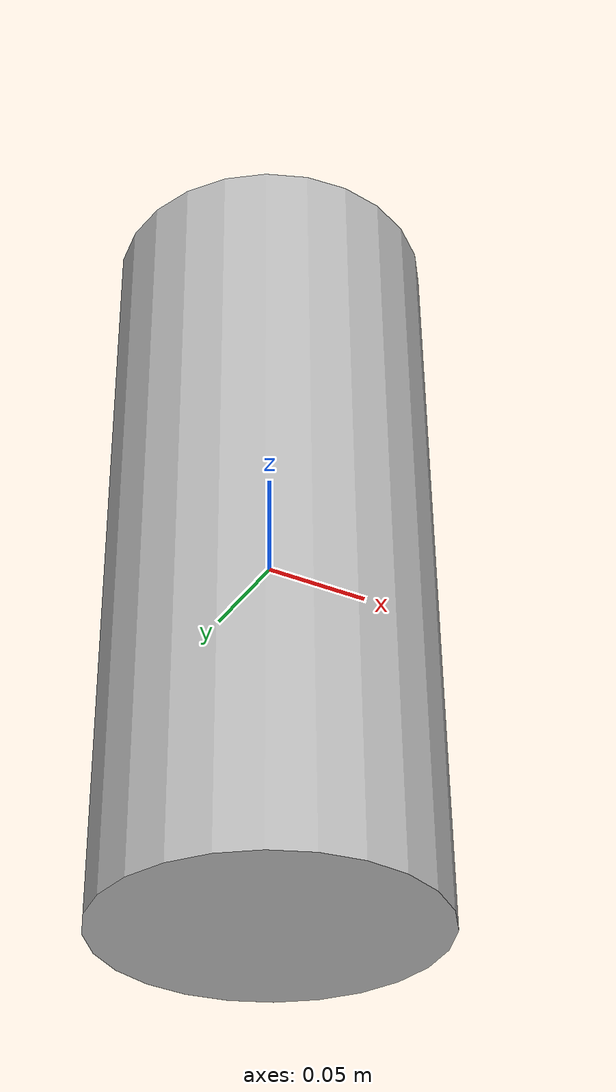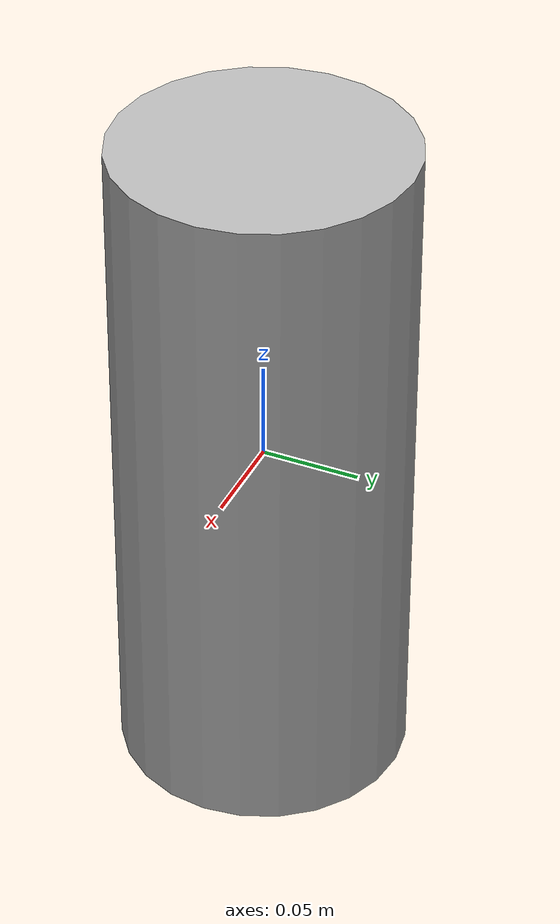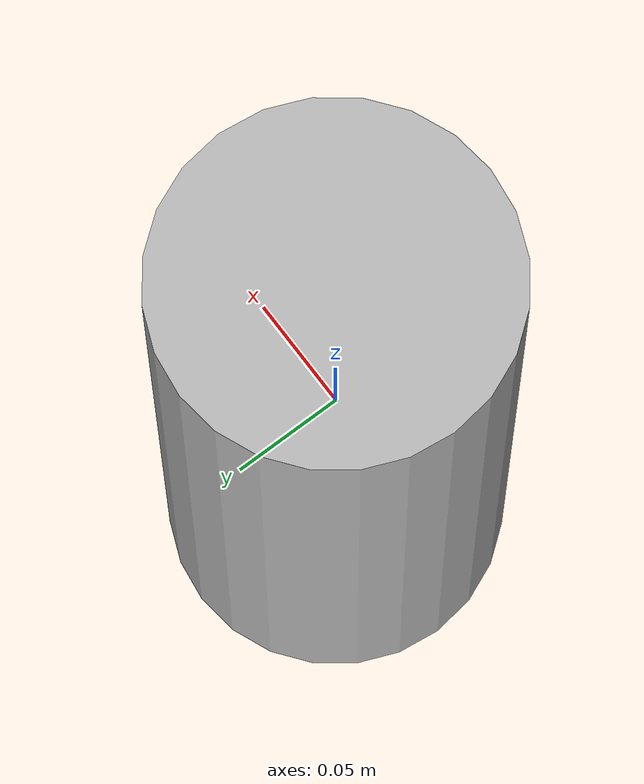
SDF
<?xml version='1.0'?>
<sdf version='1.6'>
  <model name='beer'>
    <link name='link'>
      <pose frame=''>0 0 0 0 -0 0</pose>
      <inertial>
        <mass>0.39</mass>
        <inertia>
          <ixx>0.00058</ixx>
          <ixy>0</ixy>
          <ixz>0</ixz>
          <iyy>0.00058</iyy>
          <iyz>0</iyz>
          <izz>0.00019</izz>
        </inertia>
      </inertial>
      <collision name='collision'>
        <geometry>
          <cylinder>
            <radius>0.075</radius>
            <length>0.35</length>
          </cylinder>
        </geometry>
        <max_contacts>10</max_contacts>
        <surface>
          <contact>
            <ode/>
          </contact>
          <bounce/>
          <friction>
            <torsional>
              <ode/>
            </torsional>
            <ode/>
          </friction>
        </surface>
      </collision>
      <visual name='visual'>
        <geometry>
          <cylinder>
            <radius>0.075</radius>
            <length>0.35</length>
          </cylinder>
        </geometry>
        <material>
          <script>
            <uri>model://beer/materials/scripts</uri>
            <uri>model://beer/materials/textures</uri>
            <name>Beer/Diffuse</name>
          </script>
        </material>
      </visual>
      <self_collide>0</self_collide>
      <enable_wind>0</enable_wind>
      <kinematic>0</kinematic>
    </link>
  </model>
</sdf>
